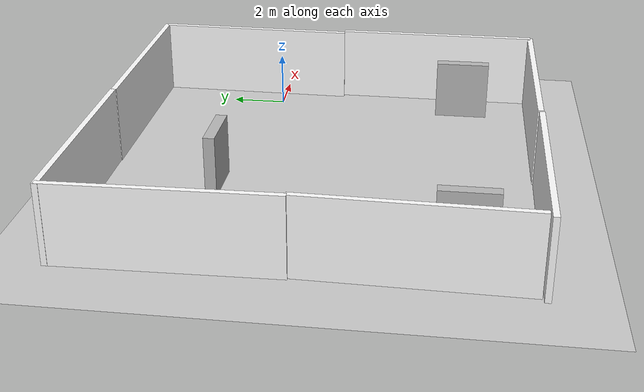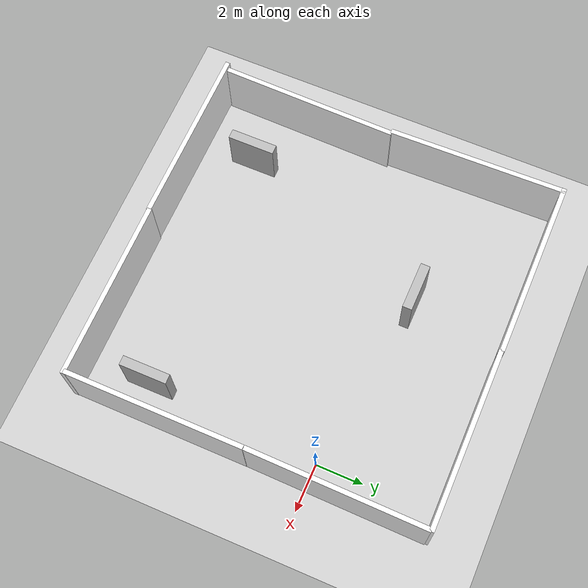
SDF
<sdf version='1.10'>
  <world name='empty'>
    <physics name='1ms' type='ignored'>
      <max_step_size>0.001</max_step_size>
      <real_time_factor>1</real_time_factor>
      <real_time_update_rate>1000</real_time_update_rate>
    </physics>
    <plugin name='gz::sim::systems::Physics' filename='gz-sim-physics-system'/>
    <plugin name='gz::sim::systems::UserCommands' filename='gz-sim-user-commands-system'/>
    <plugin name='gz::sim::systems::SceneBroadcaster' filename='gz-sim-scene-broadcaster-system'/>
    <plugin name='gz::sim::systems::Contact' filename='gz-sim-contact-system'/>
    <gravity>0 0 -9.8000000000000007</gravity>
    <magnetic_field>5.5644999999999998e-06 2.2875799999999999e-05 -4.2388400000000002e-05</magnetic_field>
    <atmosphere type='adiabatic'/>
    <scene>
      <ambient>0.400000006 0.400000006 0.400000006 1</ambient>
      <background>0.699999988 0.699999988 0.699999988 1</background>
      <shadows>true</shadows>
    </scene>
    <model name='ground_plane'>
      <static>true</static>
      <link name='link'>
        <collision name='collision'>
          <geometry>
            <plane>
              <normal>0 0 1</normal>
              <size>100 100</size>
            </plane>
          </geometry>
          <surface>
            <friction>
              <ode/>
            </friction>
            <bounce/>
            <contact/>
          </surface>
        </collision>
        <visual name='visual'>
          <geometry>
            <plane>
              <normal>0 0 1</normal>
              <size>100 100</size>
            </plane>
          </geometry>
          <material>
            <ambient>0.800000012 0.800000012 0.800000012 1</ambient>
            <diffuse>0.800000012 0.800000012 0.800000012 1</diffuse>
            <specular>0.800000012 0.800000012 0.800000012 1</specular>
          </material>
        </visual>
        <pose>0 0 0 0 0 0</pose>
        <inertial>
          <pose>0 0 0 0 0 0</pose>
          <mass>1</mass>
          <inertia>
            <ixx>1</ixx>
            <ixy>0</ixy>
            <ixz>0</ixz>
            <iyy>1</iyy>
            <iyz>0</iyz>
            <izz>1</izz>
          </inertia>
        </inertial>
        <enable_wind>false</enable_wind>
      </link>
      <pose>0 0 0 0 0 0</pose>
      <self_collide>false</self_collide>
    </model>
    <model name='grey_wall'>
      <static>true</static>
      <link name='link'>
        <pose>6.2891000000000004 10.123200000000001 1.3999999999999999 0 0 0</pose>
        <collision name='collision'>
          <geometry>
            <box>
              <size>7.5 0.20000000000000001 2.7999999999999998</size>
            </box>
          </geometry>
          <surface>
            <friction>
              <ode/>
            </friction>
            <bounce/>
            <contact/>
          </surface>
        </collision>
        <visual name='visual'>
          <cast_shadows>false</cast_shadows>
          <geometry>
            <box>
              <size>7.5 0.20000000000000001 2.7999999999999998</size>
            </box>
          </geometry>
          <material>
            <diffuse>1 1 1 1</diffuse>
            <specular>1 1 1 1</specular>
            <ambient>1 1 1 1</ambient>
            <pbr>
              <metal>
                <albedo_map>model://grey_wall/materials/textures/grey_wall.png</albedo_map>
              </metal>
            </pbr>
          </material>
        </visual>
        <inertial>
          <pose>0 0 0 0 0 0</pose>
          <mass>1</mass>
          <inertia>
            <ixx>1</ixx>
            <ixy>0</ixy>
            <ixz>0</ixz>
            <iyy>1</iyy>
            <iyz>0</iyz>
            <izz>1</izz>
          </inertia>
        </inertial>
        <enable_wind>false</enable_wind>
      </link>
      <pose>-16.29949951171875 -5.0405721664428711 0 0 0 0</pose>
      <self_collide>false</self_collide>
    </model>
    <model name='grey_wall_0'>
      <static>true</static>
      <link name='link'>
        <pose>-1.20665 10.105 1.3999999999999999 0 0 0</pose>
        <collision name='collision'>
          <geometry>
            <box>
              <size>7.5 0.20000000000000001 2.7999999999999998</size>
            </box>
          </geometry>
          <surface>
            <friction>
              <ode/>
            </friction>
            <bounce/>
            <contact/>
          </surface>
        </collision>
        <visual name='visual'>
          <cast_shadows>false</cast_shadows>
          <geometry>
            <box>
              <size>7.5 0.20000000000000001 2.7999999999999998</size>
            </box>
          </geometry>
          <material>
            <diffuse>1 1 1 1</diffuse>
            <specular>1 1 1 1</specular>
            <ambient>1 1 1 1</ambient>
            <pbr>
              <metal>
                <albedo_map>model://grey_wall/materials/textures/grey_wall.png</albedo_map>
              </metal>
            </pbr>
          </material>
        </visual>
        <inertial>
          <pose>0 0 0 0 0 0</pose>
          <mass>1</mass>
          <inertia>
            <ixx>1</ixx>
            <ixy>0</ixy>
            <ixz>0</ixz>
            <iyy>1</iyy>
            <iyz>0</iyz>
            <izz>1</izz>
          </inertia>
        </inertial>
        <enable_wind>false</enable_wind>
      </link>
      <pose>-1.3500000000000001 -5.0499999999999998 0 0 0 0</pose>
      <self_collide>false</self_collide>
    </model>
    <model name='grey_wall_1'>
      <static>true</static>
      <link name='link'>
        <pose>6.3732699999999998 0.73109299999999999 1.3999999999999999 0 0 0</pose>
        <collision name='collision'>
          <geometry>
            <box>
              <size>7.5 0.20000000000000001 2.7999999999999998</size>
            </box>
          </geometry>
          <surface>
            <friction>
              <ode/>
            </friction>
            <bounce/>
            <contact/>
          </surface>
        </collision>
        <visual name='visual'>
          <cast_shadows>false</cast_shadows>
          <geometry>
            <box>
              <size>7.5 0.20000000000000001 2.7999999999999998</size>
            </box>
          </geometry>
          <material>
            <diffuse>1 1 1 1</diffuse>
            <specular>1 1 1 1</specular>
            <ambient>1 1 1 1</ambient>
            <pbr>
              <metal>
                <albedo_map>model://grey_wall/materials/textures/grey_wall.png</albedo_map>
              </metal>
            </pbr>
          </material>
        </visual>
        <inertial>
          <pose>0 0 0 0 0 0</pose>
          <mass>1</mass>
          <inertia>
            <ixx>1</ixx>
            <ixy>0</ixy>
            <ixz>0</ixz>
            <iyy>1</iyy>
            <iyz>0</iyz>
            <izz>1</izz>
          </inertia>
        </inertial>
        <enable_wind>false</enable_wind>
      </link>
      <pose>-14.085599899291992 0.33000299334526062 -0.010608400218188763 0 0 -1.5908283847173621</pose>
      <self_collide>false</self_collide>
    </model>
    <model name='grey_wall_2'>
      <static>true</static>
      <link name='link'>
        <pose>-1.3191999999999999 0.73646299999999998 1.3999999999999999 0 0 0</pose>
        <collision name='collision'>
          <geometry>
            <box>
              <size>7.5 0.20000000000000001 2.7999999999999998</size>
            </box>
          </geometry>
          <surface>
            <friction>
              <ode/>
            </friction>
            <bounce/>
            <contact/>
          </surface>
        </collision>
        <visual name='visual'>
          <cast_shadows>false</cast_shadows>
          <geometry>
            <box>
              <size>7.5 0.20000000000000001 2.7999999999999998</size>
            </box>
          </geometry>
          <material>
            <diffuse>1 1 1 1</diffuse>
            <specular>1 1 1 1</specular>
            <ambient>1 1 1 1</ambient>
            <pbr>
              <metal>
                <albedo_map>model://grey_wall/materials/textures/grey_wall.png</albedo_map>
              </metal>
            </pbr>
          </material>
        </visual>
        <inertial>
          <pose>0 0 0 0 0 0</pose>
          <mass>1</mass>
          <inertia>
            <ixx>1</ixx>
            <ixy>0</ixy>
            <ixz>0</ixz>
            <iyy>1</iyy>
            <iyz>0</iyz>
            <izz>1</izz>
          </inertia>
        </inertial>
        <enable_wind>false</enable_wind>
      </link>
      <pose>-1.3192000389099121 -10.695400238037109 0.035998385399580002 0 0 0</pose>
      <self_collide>false</self_collide>
    </model>
    <model name='grey_wall_3'>
      <static>true</static>
      <link name='link'>
        <pose>-4.7171500000000002 6.65564 1.3999999999999999 0 0 1.56721</pose>
        <collision name='collision'>
          <geometry>
            <box>
              <size>7.5 0.20000000000000001 2.7999999999999998</size>
            </box>
          </geometry>
          <surface>
            <friction>
              <ode/>
            </friction>
            <bounce/>
            <contact/>
          </surface>
        </collision>
        <visual name='visual'>
          <cast_shadows>false</cast_shadows>
          <geometry>
            <box>
              <size>7.5 0.20000000000000001 2.7999999999999998</size>
            </box>
          </geometry>
          <material>
            <diffuse>1 1 1 1</diffuse>
            <specular>1 1 1 1</specular>
            <ambient>1 1 1 1</ambient>
            <pbr>
              <metal>
                <albedo_map>model://grey_wall/materials/textures/grey_wall.png</albedo_map>
              </metal>
            </pbr>
          </material>
        </visual>
        <inertial>
          <pose>0 0 0 0 0 0</pose>
          <mass>1</mass>
          <inertia>
            <ixx>1</ixx>
            <ixy>0</ixy>
            <ixz>0</ixz>
            <iyy>1</iyy>
            <iyz>0</iyz>
            <izz>1</izz>
          </inertia>
        </inertial>
        <enable_wind>false</enable_wind>
      </link>
      <pose>-3.4300005435943604 -5.2802038192749023 -2.2204500197172533e-16 0 0 1.5672099652001612</pose>
      <self_collide>false</self_collide>
    </model>
    <model name='grey_wall_4'>
      <static>true</static>
      <link name='link'>
        <pose>9.8056800000000006 6.6527099999999999 1.3999999999999999 0 0 -1.57637</pose>
        <collision name='collision'>
          <geometry>
            <box>
              <size>7.5 0.20000000000000001 2.7999999999999998</size>
            </box>
          </geometry>
          <surface>
            <friction>
              <ode/>
            </friction>
            <bounce/>
            <contact/>
          </surface>
        </collision>
        <visual name='visual'>
          <cast_shadows>false</cast_shadows>
          <geometry>
            <box>
              <size>7.5 0.20000000000000001 2.7999999999999998</size>
            </box>
          </geometry>
          <material>
            <diffuse>1 1 1 1</diffuse>
            <specular>1 1 1 1</specular>
            <ambient>1 1 1 1</ambient>
            <pbr>
              <metal>
                <albedo_map>model://grey_wall/materials/textures/grey_wall.png</albedo_map>
              </metal>
            </pbr>
          </material>
        </visual>
        <inertial>
          <pose>0 0 0 0 0 0</pose>
          <mass>1</mass>
          <inertia>
            <ixx>1</ixx>
            <ixy>0</ixy>
            <ixz>0</ixz>
            <iyy>1</iyy>
            <iyz>0</iyz>
            <izz>1</izz>
          </inertia>
        </inertial>
        <enable_wind>false</enable_wind>
      </link>
      <pose>-3.9528496265411377 8.3088493347167969 0 0 0 -3.1147599999340221</pose>
      <self_collide>false</self_collide>
    </model>
    <model name='grey_wall_5'>
      <static>true</static>
      <link name='link'>
        <pose>9.8052299999999999 1.6302399999999999 1.3999999999999999 0 0 -1.5597799999999999</pose>
        <collision name='collision'>
          <geometry>
            <box>
              <size>7.5 0.20000000000000001 2.7999999999999998</size>
            </box>
          </geometry>
          <surface>
            <friction>
              <ode/>
            </friction>
            <bounce/>
            <contact/>
          </surface>
        </collision>
        <visual name='visual'>
          <cast_shadows>false</cast_shadows>
          <geometry>
            <box>
              <size>7.5 0.20000000000000001 2.7999999999999998</size>
            </box>
          </geometry>
          <material>
            <diffuse>1 1 1 1</diffuse>
            <specular>1 1 1 1</specular>
            <ambient>1 1 1 1</ambient>
            <pbr>
              <metal>
                <albedo_map>model://grey_wall/materials/textures/grey_wall.png</albedo_map>
              </metal>
            </pbr>
          </material>
        </visual>
        <inertial>
          <pose>0 0 0 0 0 0</pose>
          <mass>1</mass>
          <inertia>
            <ixx>1</ixx>
            <ixy>0</ixy>
            <ixz>0</ixz>
            <iyy>1</iyy>
            <iyz>0</iyz>
            <izz>1</izz>
          </inertia>
        </inertial>
        <enable_wind>false</enable_wind>
      </link>
      <pose>-8.804905891418457 -7.6899471282958984 0.072562903165817261 0 0 -0.014859700323247385</pose>
      <self_collide>false</self_collide>
    </model>
    <model name='grey_wall_6'>
      <static>true</static>
      <link name='link'>
        <pose>-4.7522900000000003 1.80301 1.3999999999999999 0 0 -1.5856300000000001</pose>
        <collision name='collision'>
          <geometry>
            <box>
              <size>7.5 0.20000000000000001 2.7999999999999998</size>
            </box>
          </geometry>
          <surface>
            <friction>
              <ode/>
            </friction>
            <bounce/>
            <contact/>
          </surface>
        </collision>
        <visual name='visual'>
          <cast_shadows>false</cast_shadows>
          <geometry>
            <box>
              <size>7.5 0.20000000000000001 2.7999999999999998</size>
            </box>
          </geometry>
          <material>
            <diffuse>1 1 1 1</diffuse>
            <specular>1 1 1 1</specular>
            <ambient>1 1 1 1</ambient>
            <pbr>
              <metal>
                <albedo_map>model://grey_wall/materials/textures/grey_wall.png</albedo_map>
              </metal>
            </pbr>
          </material>
        </visual>
        <inertial>
          <pose>0 0 0 0 0 0</pose>
          <mass>1</mass>
          <inertia>
            <ixx>1</ixx>
            <ixy>0</ixy>
            <ixz>0</ixz>
            <iyy>1</iyy>
            <iyz>0</iyz>
            <izz>1</izz>
          </inertia>
        </inertial>
        <enable_wind>false</enable_wind>
      </link>
      <pose>5.8283796310424805 -0.5157349705696106 0 0 0 -4.440889980918258e-16</pose>
      <self_collide>false</self_collide>
    </model>
    <model name='aruco_marker_1'>
      <include>
        <static>true</static>
        <pose>-5.0943500000000004 3.0124900000000001 0 0 0 0</pose>
        <uri>model://aruco_marker1</uri>
      </include>
      <pose>-6.041100025177002 -10.631199836730957 1.0046930313110352 0 0 0</pose>
      <static>false</static>
      <self_collide>false</self_collide>
    </model>
    <model name='aruco_marker_2'>
      <include>
        <static>true</static>
        <pose>2.13768 3.64297 0 0 0 0</pose>
        <uri>model://aruco_marker2</uri>
      </include>
      <pose>-2.5225799083709717 -10.970980644226074 1.1037299633026123 0 0 0</pose>
      <static>false</static>
      <self_collide>false</self_collide>
    </model>
    <model name='aruco_marker_3'>
      <static>true</static>
      <include>
        <uri>model://aruco_marker3</uri>
      </include>
      <pose>-7.6964473724365234 1.062907338142395 1.0934100151062012 0 0 -1.5777000785993982</pose>
      <self_collide>false</self_collide>
    </model>
    <light name='sun' type='directional'>
      <pose>0 0 10 0 0 0</pose>
      <cast_shadows>true</cast_shadows>
      <intensity>1</intensity>
      <direction>-0.5 0.10000000000000001 -0.90000000000000002</direction>
      <diffuse>0.800000012 0.800000012 0.800000012 1</diffuse>
      <specular>0.200000003 0.200000003 0.200000003 1</specular>
      <attenuation>
        <range>1000</range>
        <linear>0.0099999997764825821</linear>
        <constant>0.89999997615814209</constant>
        <quadratic>0.0010000000474974513</quadratic>
      </attenuation>
      <spot>
        <inner_angle>0</inner_angle>
        <outer_angle>0</outer_angle>
        <falloff>0</falloff>
      </spot>
    </light>
  </world>
</sdf>

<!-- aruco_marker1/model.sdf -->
<sdf version='1.5'>
  <model name='aruco_marker1'>

    <link name='marker'>
      <pose frame=''>0 0 0 0 0 0</pose>
      <inertial>
        <mass>1</mass>
        </inertial>
        <collision name="collision">
          <geometry>
            <mesh>
              <uri>model://aruco_marker1/meshes/aruco_1_collision.DAE</uri>
            </mesh>
          </geometry>
        </collision>

        <visual name="visual">
          <geometry>
            <mesh>
              <uri>model://aruco_marker1/meshes/aruco_1_visual.DAE</uri>
            </mesh>
          </geometry>
        </visual>
    </link>

  </model>
</sdf>

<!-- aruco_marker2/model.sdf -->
<sdf version='1.5'>
  <model name='aruco_marker2'>

    <link name='marker'>
      <pose frame=''>0 0 0 0 0 0</pose>
      <inertial>
        <mass>1</mass>
        </inertial>
        <collision name="collision">
          <geometry>
            <mesh>
              <uri>model://aruco_marker2/meshes/aruco_2_collision.DAE</uri>
            </mesh>
          </geometry>
        </collision>

        <visual name="visual">
          <geometry>
            <mesh>
              <uri>model://aruco_marker2/meshes/aruco_2_visual.DAE</uri>
            </mesh>
          </geometry>
        </visual>
    </link>

  </model>
</sdf>

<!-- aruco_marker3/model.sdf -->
<sdf version='1.5'>
  <model name='aruco_marker3'>

    <link name='marker'>
      <pose frame=''>0 0 0 0 0 0</pose>
      <inertial>
        <mass>1</mass>
        </inertial>
        <collision name="collision">
          <geometry>
            <mesh>
              <uri>model://aruco_marker3/meshes/aruco_3_collision.DAE</uri>
            </mesh>
          </geometry>
        </collision>

        <visual name="visual">
          <geometry>
            <mesh>
              <uri>model://aruco_marker3/meshes/aruco_3_visual.DAE</uri>
            </mesh>
          </geometry>
        </visual>
    </link>

  </model>
</sdf>
